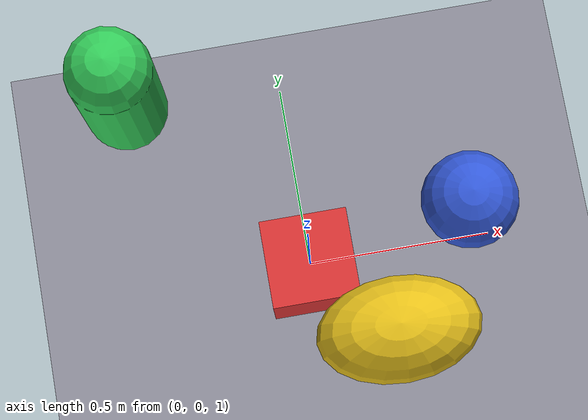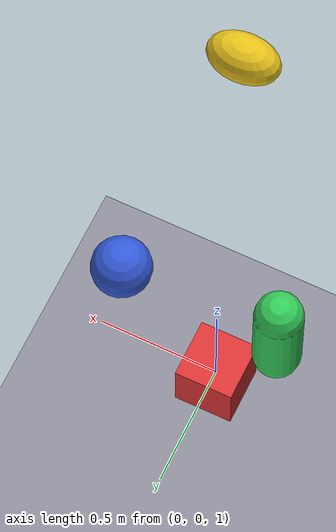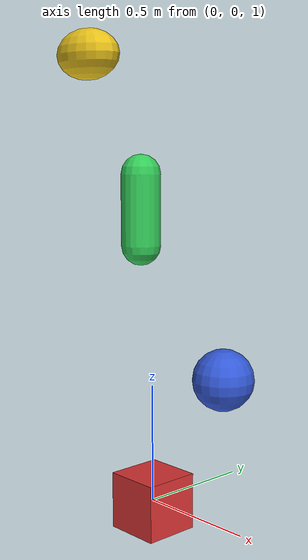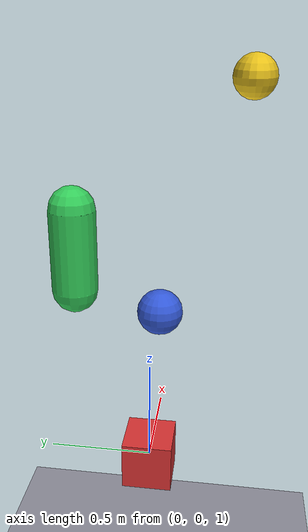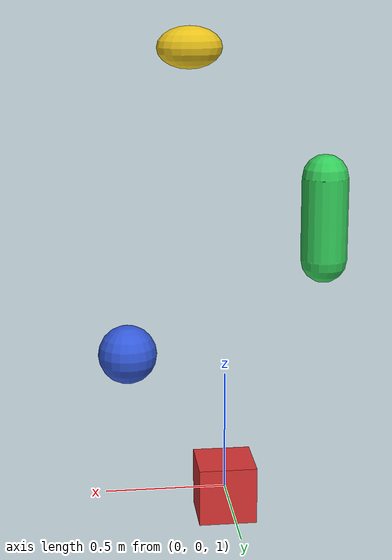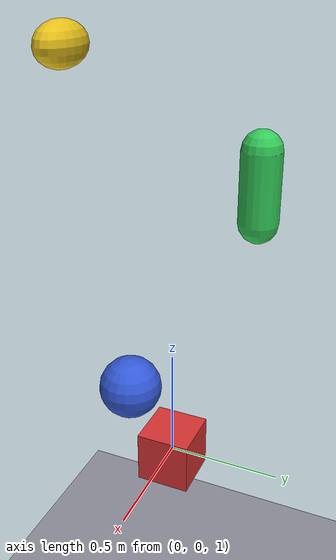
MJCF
<mujoco model="mj_gui_test">
  <option gravity="0 0 -9.81"/>
  <visual><global offwidth="1280" offheight="720"/></visual>
  <worldbody>
    <light pos="0 0 4" dir="0 0 -1"/>
    <geom type="plane" size="3 3 0.1" rgba="0.55 0.55 0.6 1"/>
    <body pos="0 0 1.0"><freejoint/><geom type="box" size="0.12 0.12 0.12" rgba="0.85 0.2 0.2 1"/></body>
    <body pos="0.4 0 1.6"><freejoint/><geom type="sphere" size="0.12" rgba="0.2 0.35 0.85 1"/></body>
    <body pos="-0.35 0.25 2.2"><freejoint/><geom type="capsule" size="0.09 0.16" rgba="0.2 0.8 0.35 1"/></body>
    <body pos="0.1 -0.4 2.8"><freejoint/><geom type="ellipsoid" size="0.14 0.09 0.09" rgba="0.9 0.75 0.1 1"/></body>
  </worldbody>
</mujoco>
